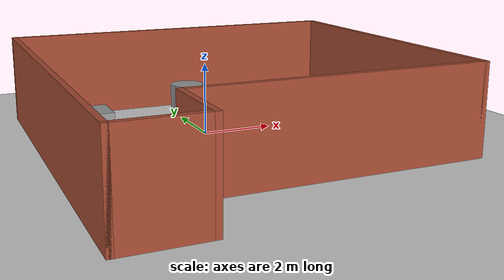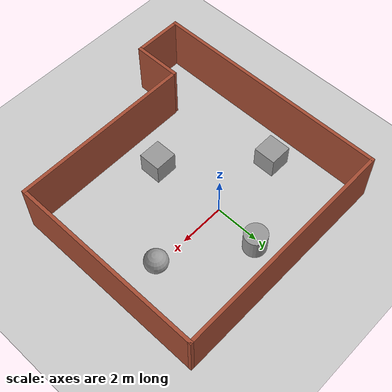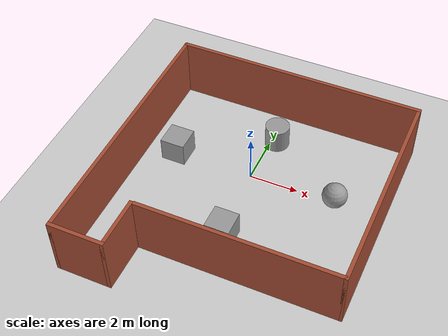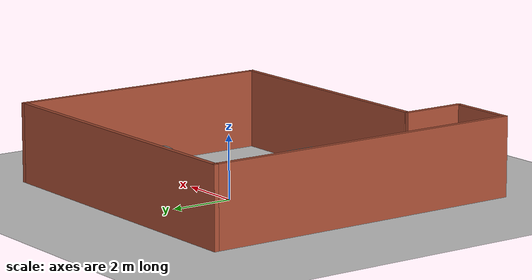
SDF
<sdf version="1.6">
 <world name="default">
  <light name="sun" type="directional">
   <pose>0 0 10 0 -0 0</pose>
   <diffuse>0.8 0.8 0.8 1</diffuse>
   <specular>0.2 0.2 0.2 1</specular>
   <attenuation>
    <range>1000</range>
    <constant>0.9</constant>
    <linear>0.01</linear>
    <quadratic>0.001</quadratic>
   </attenuation>
   <direction>-0.5 0.1 -0.9</direction>
  </light>
  <model name="ground_plane">
   <static>1</static>
   <link name="link">
    <collision name="collision">
     <geometry><plane><normal>0 0 1</normal><size>100 100</size></plane></geometry>
     <surface>
      <contact><collide_bitmask>65535</collide_bitmask></contact>
      <friction><ode><mu>100</mu><mu2>50</mu2></ode></friction>
     </surface>
    </collision>
    <visual name="visual">
     <cast_shadows>0</cast_shadows>
     <geometry><plane><normal>0 0 1</normal><size>100 100</size></plane></geometry>
     <material>
      <script><uri>file://media/materials/scripts/gazebo.material</uri><name>Gazebo/Grey</name></script>
     </material>
    </visual>
   </link>
  </model>
  <gravity>0 0 -9.8</gravity>
  <magnetic_field>6e-06 2.3e-05 -4.2e-05</magnetic_field>
  <atmosphere type="adiabatic"/>
  <physics name="default_physics" default="0" type="ode">
   <max_step_size>0.001</max_step_size>
   <real_time_factor>1</real_time_factor>
   <real_time_update_rate>1000</real_time_update_rate>
  </physics>
  <scene><ambient>0.4 0.4 0.4 1</ambient><background>0.7 0.7 0.7 1</background><shadows>1</shadows></scene>
  <audio><device>default</device></audio>
  <spherical_coordinates>
   <surface_model>EARTH_WGS84</surface_model>
   <latitude_deg>0</latitude_deg>
   <longitude_deg>0</longitude_deg>
   <elevation>0</elevation>
   <heading_deg>0</heading_deg>
  </spherical_coordinates>
  <model name="shapes_placed">
   <link name="link_1">
    <inertial>
     <mass>1</mass>
     <inertia><ixx>0.145833</ixx><ixy>0</ixy><ixz>0</ixz><iyy>0.145833</iyy><iyz>0</iyz><izz>0.125</izz></inertia>
    </inertial>
    <pose>0.057311 2.42119 0 0 -0 0</pose>
    <visual name="visual">
     <geometry><cylinder><radius>0.5</radius><length>1</length></cylinder></geometry>
     <material>
      <lighting>1</lighting>
      <script><uri>file://media/materials/scripts/gazebo.material</uri><name>Gazebo/Grey</name></script>
     </material>
    </visual>
    <collision name="collision">
     <geometry><cylinder><radius>0.5</radius><length>1</length></cylinder></geometry>
     <surface>
      <friction>
       <ode><mu>1</mu><mu2>1</mu2><fdir1>0 0 0</fdir1><slip1>0</slip1><slip2>0</slip2></ode>
       <torsional>
        <coefficient>1</coefficient>
        <patch_radius>0</patch_radius>
        <surface_radius>0</surface_radius>
        <use_patch_radius>1</use_patch_radius>
        <ode><slip>0</slip></ode>
       </torsional>
      </friction>
      <bounce><restitution_coefficient>0</restitution_coefficient><threshold>1e+06</threshold></bounce>
      <contact>
       <collide_without_contact>0</collide_without_contact>
       <collide_without_contact_bitmask>1</collide_without_contact_bitmask>
       <collide_bitmask>1</collide_bitmask>
       <ode>
        <soft_cfm>0</soft_cfm>
        <soft_erp>0.2</soft_erp>
        <kp>1e+13</kp>
        <kd>1</kd>
        <max_vel>0.01</max_vel>
        <min_depth>0</min_depth>
       </ode>
       <bullet>
        <split_impulse>1</split_impulse>
        <split_impulse_penetration_threshold>-0.01</split_impulse_penetration_threshold>
        <soft_cfm>0</soft_cfm>
        <soft_erp>0.2</soft_erp>
        <kp>1e+13</kp>
        <kd>1</kd>
       </bullet>
      </contact>
     </surface>
    </collision>
   </link>
   <link name="link_4">
    <inertial>
     <mass>1</mass>
     <inertia>
      <ixx>0.166667</ixx>
      <ixy>0</ixy>
      <ixz>0</ixz>
      <iyy>0.166667</iyy>
      <iyz>0</iyz>
      <izz>0.166667</izz>
     </inertia>
    </inertial>
    <pose>-3.42702 0.26658 0 0 -0 0</pose>
    <visual name="visual">
     <geometry><box><size>1 1 1</size></box></geometry>
     <material>
      <lighting>1</lighting>
      <script><uri>file://media/materials/scripts/gazebo.material</uri><name>Gazebo/Grey</name></script>
     </material>
    </visual>
    <collision name="collision">
     <geometry><box><size>1 1 1</size></box></geometry>
     <surface>
      <friction>
       <ode><mu>1</mu><mu2>1</mu2><fdir1>0 0 0</fdir1><slip1>0</slip1><slip2>0</slip2></ode>
       <torsional>
        <coefficient>1</coefficient>
        <patch_radius>0</patch_radius>
        <surface_radius>0</surface_radius>
        <use_patch_radius>1</use_patch_radius>
        <ode><slip>0</slip></ode>
       </torsional>
      </friction>
      <bounce><restitution_coefficient>0</restitution_coefficient><threshold>1e+06</threshold></bounce>
      <contact>
       <collide_without_contact>0</collide_without_contact>
       <collide_without_contact_bitmask>1</collide_without_contact_bitmask>
       <collide_bitmask>1</collide_bitmask>
       <ode>
        <soft_cfm>0</soft_cfm>
        <soft_erp>0.2</soft_erp>
        <kp>1e+13</kp>
        <kd>1</kd>
        <max_vel>0.01</max_vel>
        <min_depth>0</min_depth>
       </ode>
       <bullet>
        <split_impulse>1</split_impulse>
        <split_impulse_penetration_threshold>-0.01</split_impulse_penetration_threshold>
        <soft_cfm>0</soft_cfm>
        <soft_erp>0.2</soft_erp>
        <kp>1e+13</kp>
        <kd>1</kd>
       </bullet>
      </contact>
     </surface>
    </collision>
   </link>
   <link name="link_5">
    <inertial>
     <mass>1</mass>
     <inertia>
      <ixx>0.166667</ixx>
      <ixy>0</ixy>
      <ixz>0</ixz>
      <iyy>0.166667</iyy>
      <iyz>0</iyz>
      <izz>0.166667</izz>
     </inertia>
    </inertial>
    <pose>0.034428 -2.94681 0 0 -0 0</pose>
    <visual name="visual">
     <geometry><box><size>1 1 1</size></box></geometry>
     <material>
      <lighting>1</lighting>
      <script><uri>file://media/materials/scripts/gazebo.material</uri><name>Gazebo/Grey</name></script>
     </material>
    </visual>
    <collision name="collision">
     <geometry><box><size>1 1 1</size></box></geometry>
     <surface>
      <friction>
       <ode><mu>1</mu><mu2>1</mu2><fdir1>0 0 0</fdir1><slip1>0</slip1><slip2>0</slip2></ode>
       <torsional>
        <coefficient>1</coefficient>
        <patch_radius>0</patch_radius>
        <surface_radius>0</surface_radius>
        <use_patch_radius>1</use_patch_radius>
        <ode><slip>0</slip></ode>
       </torsional>
      </friction>
      <bounce><restitution_coefficient>0</restitution_coefficient><threshold>1e+06</threshold></bounce>
      <contact>
       <collide_without_contact>0</collide_without_contact>
       <collide_without_contact_bitmask>1</collide_without_contact_bitmask>
       <collide_bitmask>1</collide_bitmask>
       <ode>
        <soft_cfm>0</soft_cfm>
        <soft_erp>0.2</soft_erp>
        <kp>1e+13</kp>
        <kd>1</kd>
        <max_vel>0.01</max_vel>
        <min_depth>0</min_depth>
       </ode>
       <bullet>
        <split_impulse>1</split_impulse>
        <split_impulse_penetration_threshold>-0.01</split_impulse_penetration_threshold>
        <soft_cfm>0</soft_cfm>
        <soft_erp>0.2</soft_erp>
        <kp>1e+13</kp>
        <kd>1</kd>
       </bullet>
      </contact>
     </surface>
    </collision>
   </link>
   <link name="link_6">
    <inertial>
     <mass>1</mass>
     <inertia><ixx>0.1</ixx><ixy>0</ixy><ixz>0</ixz><iyy>0.1</iyy><iyz>0</iyz><izz>0.1</izz></inertia>
    </inertial>
    <pose>3.33528 0.259053 0 0 -0 0</pose>
    <visual name="visual">
     <geometry><sphere><radius>0.5</radius></sphere></geometry>
     <material>
      <lighting>1</lighting>
      <script><uri>file://media/materials/scripts/gazebo.material</uri><name>Gazebo/Grey</name></script>
     </material>
    </visual>
    <collision name="collision">
     <geometry><sphere><radius>0.5</radius></sphere></geometry>
     <surface>
      <friction>
       <ode><mu>1</mu><mu2>1</mu2><fdir1>0 0 0</fdir1><slip1>0</slip1><slip2>0</slip2></ode>
       <torsional>
        <coefficient>1</coefficient>
        <patch_radius>0</patch_radius>
        <surface_radius>0</surface_radius>
        <use_patch_radius>1</use_patch_radius>
        <ode><slip>0</slip></ode>
       </torsional>
      </friction>
      <bounce><restitution_coefficient>0</restitution_coefficient><threshold>1e+06</threshold></bounce>
      <contact>
       <collide_without_contact>0</collide_without_contact>
       <collide_without_contact_bitmask>1</collide_without_contact_bitmask>
       <collide_bitmask>1</collide_bitmask>
       <ode>
        <soft_cfm>0</soft_cfm>
        <soft_erp>0.2</soft_erp>
        <kp>1e+13</kp>
        <kd>1</kd>
        <max_vel>0.01</max_vel>
        <min_depth>0</min_depth>
       </ode>
       <bullet>
        <split_impulse>1</split_impulse>
        <split_impulse_penetration_threshold>-0.01</split_impulse_penetration_threshold>
        <soft_cfm>0</soft_cfm>
        <soft_erp>0.2</soft_erp>
        <kp>1e+13</kp>
        <kd>1</kd>
       </bullet>
      </contact>
     </surface>
    </collision>
   </link>
   <static>0</static>
   <pose>0.203355 -0.268823 0.5 0 -0 0</pose>
  </model>
  <model name="walls_placed">
   <pose>0.47 -1.56 0 0 -0 0</pose>
   <link name="Wall_4">
    <collision name="Wall_4_Collision">
     <geometry><box><size>8 0.15 2.5</size></box></geometry>
     <pose>0 0 1.25 0 -0 0</pose>
    </collision>
    <visual name="Wall_4_Visual">
     <pose>0 0 1.25 0 -0 0</pose>
     <geometry><box><size>8 0.15 2.5</size></box></geometry>
     <material>
      <script><uri>file://media/materials/scripts/gazebo.material</uri><name>Gazebo/Bricks</name></script>
      <ambient>1 1 1 1</ambient>
     </material>
     <meta><layer>0</layer></meta>
    </visual>
    <pose>1.125 -3.3 0 0 -0 0</pose>
   </link>
   <link name="Wall_5">
    <collision name="Wall_5_Collision">
     <geometry><box><size>8.75 0.15 2.5</size></box></geometry>
     <pose>0 0 1.25 0 -0 0</pose>
    </collision>
    <visual name="Wall_5_Visual">
     <pose>0 0 1.25 0 -0 0</pose>
     <geometry><box><size>8.75 0.15 2.5</size></box></geometry>
     <material>
      <script><uri>file://media/materials/scripts/gazebo.material</uri><name>Gazebo/Bricks</name></script>
      <ambient>1 1 1 1</ambient>
     </material>
     <meta><layer>0</layer></meta>
    </visual>
    <pose>5.05 1 0 0 -0 1.5708</pose>
   </link>
   <link name="Wall_6">
    <collision name="Wall_6_Collision">
     <geometry><box><size>10.25 0.15 2.5</size></box></geometry>
     <pose>0 0 1.25 0 -0 0</pose>
    </collision>
    <visual name="Wall_6_Visual">
     <pose>0 0 1.25 0 -0 0</pose>
     <geometry><box><size>10.25 0.15 2.5</size></box></geometry>
     <material>
      <script><uri>file://media/materials/scripts/gazebo.material</uri><name>Gazebo/Bricks</name></script>
      <ambient>1 1 1 1</ambient>
     </material>
     <meta><layer>0</layer></meta>
    </visual>
    <pose>-0 5.3 0 0 -0 3.14159</pose>
   </link>
   <link name="Wall_7">
    <collision name="Wall_7_Collision">
     <geometry><box><size>10.75 0.15 2.5</size></box></geometry>
     <pose>0 0 1.25 0 -0 0</pose>
    </collision>
    <visual name="Wall_7_Visual">
     <pose>0 0 1.25 0 -0 0</pose>
     <geometry><box><size>10.75 0.15 2.5</size></box></geometry>
     <material>
      <script><uri>file://media/materials/scripts/gazebo.material</uri><name>Gazebo/Bricks</name></script>
      <ambient>1 1 1 1</ambient>
     </material>
     <meta><layer>0</layer></meta>
    </visual>
    <pose>-5.05 0 0 0 -0 -1.5708</pose>
   </link>
   <link name="Wall_8">
    <collision name="Wall_8_Collision">
     <geometry><box><size>2.25 0.15 2.5</size></box></geometry>
     <pose>0 0 1.25 0 -0 0</pose>
    </collision>
    <visual name="Wall_8_Visual">
     <pose>0 0 1.25 0 -0 0</pose>
     <geometry><box><size>2.25 0.15 2.5</size></box></geometry>
     <material>
      <script><uri>file://media/materials/scripts/gazebo.material</uri><name>Gazebo/Bricks</name></script>
      <ambient>1 1 1 1</ambient>
     </material>
     <meta><layer>0</layer></meta>
    </visual>
    <pose>-4 -5.3 0 0 -0 0</pose>
   </link>
   <link name="Wall_9">
    <collision name="Wall_9_Collision">
     <geometry><box><size>2.125 0.15 2.5</size></box></geometry>
     <pose>0 0 1.25 0 -0 0</pose>
    </collision>
    <visual name="Wall_9_Visual">
     <pose>0 0 1.25 0 -0 0</pose>
     <geometry><box><size>2.125 0.15 2.5</size></box></geometry>
     <material>
      <script><uri>file://media/materials/scripts/gazebo.material</uri><name>Gazebo/Bricks</name></script>
      <ambient>1 1 1 1</ambient>
     </material>
     <meta><layer>0</layer></meta>
    </visual>
    <pose>-2.95 -4.3125 0 0 -0 1.5708</pose>
   </link>
   <static>1</static>
  </model>
 </world>
</sdf>
